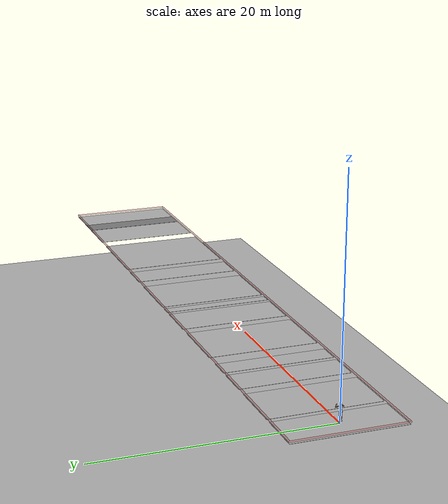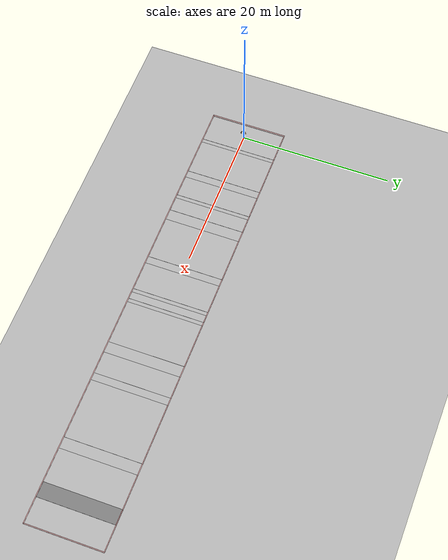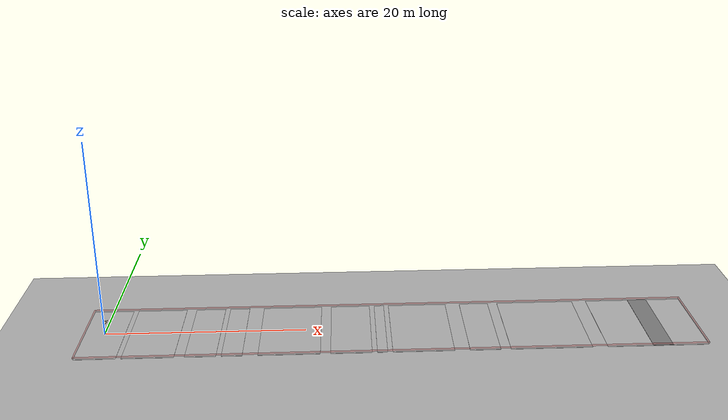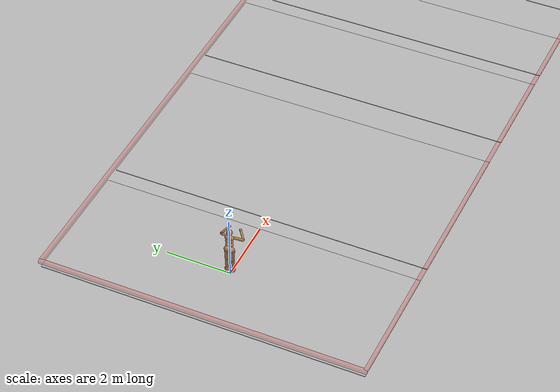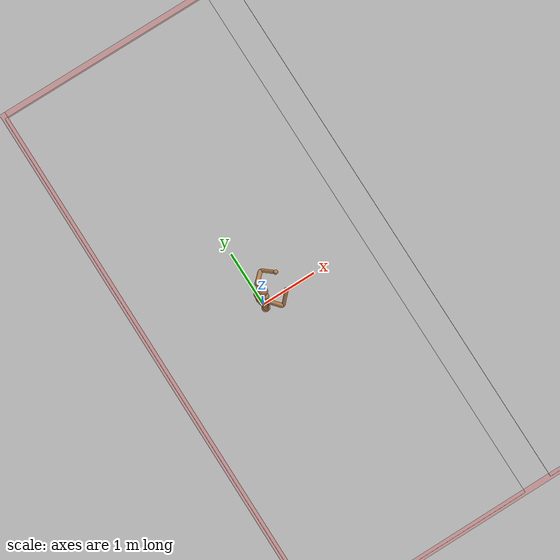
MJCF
<mujoco model="gaps_humanoid">
  <option timestep="0.004" iterations="1" ls_iterations="5" solver="Newton">
    <flag eulerdamp="disable"/>
  </option>

  <statistic center="0 0 0.1" extent="10.0" meansize="0.04"/>

  <visual>
    <rgba force="1 0 0 1" haze = "0.71 0.71 0.71 0.51" fog="0.71 0.71 0.71 1" rangefinder="1 1 0.1 0.11"/>
    <global azimuth="140" elevation="-20" offwidth="1920" offheight="1080"/>
    <quality shadowsize="8192" offsamples="8" numslices="32" numstacks="24" numquads="16"/>
  </visual>

  <asset>
    <texture type="skybox" builtin="gradient" rgb1="0.71 0.71 0.71" rgb2="0.71 0.71 0.71" width="800" height="800"/>
    <texture name="grey_squares" builtin="checker" height="800" width="800" rgb1="0.71 0.71 0.71" rgb2="0.71 0.71 0.71" type="2d" mark="edge" markrgb="1 1 1"/>
    <texture name="black_white_checkers" type="2d" builtin="checker" width="512" height="512" rgb1="0 0 0" rgb2="1 1 1"/>

    <material name="body" rgba=".7 .5 .3 1" specular="0.9" shininess="0.8"/>
    <material name="floor" reflectance="0.0" texrepeat="1 1" texuniform="true" texture="grey_squares"/>
    <material name="finish_line" texture="black_white_checkers" texrepeat="2 10"/>
  </asset>

  <default>
    <joint armature="1" damping="1" limited="true"/>
    <geom contype="0" conaffinity="0" condim="3"/>
    <motor ctrllimited="true" ctrlrange="-.4 .4"/>
    <default class="humanoid">
      <geom type="capsule" material="body"/>
    </default>
    <default class="platform">
      <geom material="floor"/>
    </default>
  </default>

  <worldbody>
    <!-- Building out the track -->
    <geom name="floor_bottom" pos="0 0 -10" size="0 0 0.010" type="plane" material="floor"/>
    <geom name="side_railing1" type="box" pos="28.75 5 0.2" size="30.75 0.05 0.06" rgba="0.9 0.3 0.3 0.31"/>
    <geom name="side_railing2" type="box" pos="28.75 -5 0.2" size="30.75 0.05 0.06" rgba="0.9 0.3 0.3 0.31"/>
    <geom name="back_railing" type="box" pos="-2.0 0.0 0.2" size="0.05 5.05 0.06" rgba="0.9 0.3 0.3 0.31"/>
    <geom name="front_railing" type="box" pos="59.5 0.0 0.2" size="0.05 5.05 0.06" rgba="0.9 0.3 0.3 0.31"/>
    <geom name="finish_line" type="box" pos="55 0 0.01" size="1 5 0.01" material="finish_line"/>
    <site name="finish_line" size="0.01" pos="55 0 0"/>

    <!-- Humanoid -->
    <body name="humanoid" childclass="humanoid" pos="0 0 1.40">
      <camera name="cam_default" mode="trackcom" pos="1.242 -9.993 5.903" xyaxes="0.996 0.087 -0.000 -0.044 0.501 0.864"/>
      <light name="tracking_light" pos="0 0 7" dir="0 0 -1" specular="0.8 0.8 0.8" mode="trackcom"/>
      <site name="humanoid" size="0.01" pos="0 0 0"/>
      <joint name="humanoid_root" type="free" armature="0" damping="0" limited="false" pos="0 0 0" stiffness="0"/>
      <geom name="humanoid_torso" fromto="0 -.07 0 0 .07 0" size="0.07" type="capsule"/>

      <body name="humanoid_head" pos="0 0 0.19">
        <geom name="humanoid_head" pos="0 0 0" size=".09" type="sphere"/>
        <site name="humanoid_ray_00" fromto=".23 -.02  -.03 .17 0 .0" type="capsule" size=".002 .1" group="4"/>
        <site name="humanoid_ray_01" fromto=".23 -.01  -.03 .17 0 .0" type="capsule" size=".002 .1" group="4"/>
        <site name="humanoid_ray_02" fromto=".23   0   -.03 .17 0 .0" type="capsule" size=".002 .1" group="4"/>
        <site name="humanoid_ray_03" fromto=".23  .01  -.03 .17 0 .0" type="capsule" size=".002 .1" group="4"/>
        <site name="humanoid_ray_04" fromto=".23  .02  -.03 .17 0 .0" type="capsule" size=".002 .1" group="4"/>

        <site name="humanoid_ray_05" fromto=".22 -.02  -.03  .17 0 .0" type="capsule" size=".002 .1" group="4"/>
        <site name="humanoid_ray_06" fromto=".22 -.01  -.03  .17 0 .0" type="capsule" size=".002 .1" group="4"/>
        <site name="humanoid_ray_07" fromto=".22   0   -.03  .17 0 .0" type="capsule" size=".002 .1" group="4"/>
        <site name="humanoid_ray_08" fromto=".22  .01  -.03  .17 0 .0" type="capsule" size=".002 .1" group="4"/>
        <site name="humanoid_ray_09" fromto=".22  .02  -.03  .17 0 .0" type="capsule" size=".002 .1" group="4"/>

        <site name="humanoid_ray_10" fromto=".21 -.02  -.03 .17 0 .0" type="capsule" size=".002 .1" group="4"/>
        <site name="humanoid_ray_11" fromto=".21 -.01  -.03 .17 0 .0" type="capsule" size=".002 .1" group="4"/>
        <site name="humanoid_ray_12" fromto=".21   0   -.03 .17 0 .0" type="capsule" size=".002 .1" group="4"/>
        <site name="humanoid_ray_13" fromto=".21  .01  -.03 .17 0 .0" type="capsule" size=".002 .1" group="4"/>
        <site name="humanoid_ray_14" fromto=".21  .02  -.03 .17 0 .0" type="capsule" size=".002 .1" group="4"/>

        <site name="humanoid_ray_15" fromto=".2 -.02  -.03 .17 0 .0" type="capsule" size=".002 .1" group="4"/>
        <site name="humanoid_ray_16" fromto=".2 -.01  -.03 .17 0 .0" type="capsule" size=".002 .1" group="4"/>
        <site name="humanoid_ray_17" fromto=".2   0   -.03 .17 0 .0" type="capsule" size=".002 .1" group="4"/>
        <site name="humanoid_ray_18" fromto=".2  .01  -.03 .17 0 .0" type="capsule" size=".002 .1" group="4"/>
        <site name="humanoid_ray_19" fromto=".2  .02  -.03 .17 0 .0" type="capsule" size=".002 .1" group="4"/>

        <site name="humanoid_ray_20" fromto=".19 -.02  -.03 .17  0 .0" type="capsule" size=".002 .1" group="4"/>
        <site name="humanoid_ray_21" fromto=".19 -.01  -.03 .17  0 .0" type="capsule" size=".002 .1" group="4"/>
        <site name="humanoid_ray_22" fromto=".19   0   -.03 .17  0 .0" type="capsule" size=".002 .1" group="4"/>
        <site name="humanoid_ray_23" fromto=".19  .01  -.03 .17  0 .0" type="capsule" size=".002 .1" group="4"/>
        <site name="humanoid_ray_24" fromto=".19  .02  -.03 .17  0 .0" type="capsule" size=".002 .1" group="4"/>

        <site name="humanoid_ray_25" fromto=".18 -.02  -.03 .17  0 .00" type="capsule" size=".002 .1" group="4"/>
        <site name="humanoid_ray_26" fromto=".18 -.01  -.03 .17  0 .00" type="capsule" size=".002 .1" group="4"/>
        <site name="humanoid_ray_27" fromto=".18   0   -.03 .17  0 .00" type="capsule" size=".002 .1" group="4"/>
        <site name="humanoid_ray_28" fromto=".18  .01  -.03 .17  0 .00" type="capsule" size=".002 .1" group="4"/>
        <site name="humanoid_ray_29" fromto=".18  .02  -.03 .17  0 .00" type="capsule" size=".002 .1" group="4"/>
      </body>

      <geom name="humanoid_uwaist" fromto="-.01 -.06 -.12 -.01 .06 -.12" size="0.06" type="capsule"/>
      <body name="humanoid_lwaist" pos="-.01 0 -0.260" quat="1.000 0 -0.002 0">
        <geom name="humanoid_lwaist" fromto="0 -.06 0 0 .06 0" size="0.06" type="capsule"/>
        <joint name="humanoid_abdomen_z" armature="0.02" axis="0 0 1" damping="5" pos="0 0 0.065" range="-45 45" stiffness="20" type="hinge"/>
        <joint name="humanoid_abdomen_y" armature="0.02" axis="0 1 0" damping="5" pos="0 0 0.065" range="-75 30" stiffness="10" type="hinge"/>
        <body name="humanoid_pelvis" pos="0 0 -0.165" quat="1.000 0 -0.002 0">
          <joint name="humanoid_abdomen_x" armature="0.02" axis="1 0 0" damping="5" pos="0 0 0.1" range="-35 35" stiffness="10" type="hinge"/>
          <geom name="humanoid_butt" fromto="-.02 -.07 0 -.02 .07 0" size="0.09" type="capsule"/>
          <body name="humanoid_right_thigh" pos="0 -0.1 -0.04">
            <joint name="humanoid_right_hip_x" armature="0.01" axis="1 0 0" damping="5" pos="0 0 0" range="-25 5" stiffness="10" type="hinge"/>
            <joint name="humanoid_right_hip_z" armature="0.01" axis="0 0 1" damping="5" pos="0 0 0" range="-60 35" stiffness="10" type="hinge"/>
            <joint name="humanoid_right_hip_y" armature="0.0080" axis="0 1 0" damping="5" pos="0 0 0" range="-110 20" stiffness="20" type="hinge"/>
            <geom name="humanoid_right_thigh" fromto="0 0 0 0 0.01 -.34" size="0.06" type="capsule"/>
            <body name="humanoid_right_shin" pos="0 0.01 -0.403">
              <joint name="humanoid_right_knee" armature="0.0060" axis="0 -1 0" pos="0 0 .02" range="-160 -2" type="hinge"/>
              <geom name="humanoid_right_shin" fromto="0 0 0 0 0 -.3" size="0.049" type="capsule"/>
              <body name="humanoid_right_foot" pos="0 0 -0.45">
                <geom name="humanoid_right_foot" pos="0 0 0.1" size="0.075" type="sphere"/>
              </body>
            </body>
          </body>
          <body name="humanoid_left_thigh" pos="0 0.1 -0.04">
            <joint name="humanoid_left_hip_x" armature="0.01" axis="-1 0 0" damping="5" pos="0 0 0" range="-25 5" stiffness="10" type="hinge"/>
            <joint name="humanoid_left_hip_z" armature="0.01" axis="0 0 -1" damping="5" pos="0 0 0" range="-60 35" stiffness="10" type="hinge"/>
            <joint name="humanoid_left_hip_y" armature="0.01" axis="0 1 0" damping="5" pos="0 0 0" range="-110 20" stiffness="20" type="hinge"/>
            <geom name="humanoid_left_thigh" fromto="0 0 0 0 -0.01 -.34" size="0.06" type="capsule"/>
            <body name="humanoid_left_shin" pos="0 -0.01 -0.403">
              <joint name="humanoid_left_knee" armature="0.0060" axis="0 -1 0" pos="0 0 .02" range="-160 -2" stiffness="1" type="hinge"/>
              <geom name="humanoid_left_shin" fromto="0 0 0 0 0 -.3" size="0.049" type="capsule"/>
              <body name="humanoid_left_foot" pos="0 0 -0.45">
                <geom name="humanoid_left_foot" type="sphere" size="0.075" pos="0 0 0.1"/>
              </body>
            </body>
          </body>
        </body>
      </body>
      <body name="humanoid_right_upper_arm" pos="0 -0.17 0.06">
        <joint name="humanoid_right_shoulder1" armature="0.0068" axis="2 1 1" pos="0 0 0" range="-85 60" stiffness="1" type="hinge"/>
        <joint name="humanoid_right_shoulder2" armature="0.0051" axis="0 -1 1" pos="0 0 0" range="-85 60" stiffness="1" type="hinge"/>
        <geom name="humanoid_right_uarm" fromto="0 0 0 .16 -.16 -.16" size="0.04 0.16" type="capsule"/>
        <body name="humanoid_right_lower_arm" pos=".18 -.18 -.18">
          <joint name="humanoid_right_elbow" armature="0.0028" axis="0 -1 1" pos="0 0 0" range="-90 50" stiffness="0" type="hinge"/>
          <geom name="humanoid_right_larm" fromto="0.01 0.01 0.01 .17 .17 .17" size="0.031" type="capsule"/>
          <geom name="humanoid_right_hand" pos=".18 .18 .18" size="0.04" type="sphere"/>
        </body>
      </body>
      <body name="humanoid_left_upper_arm" pos="0 0.17 0.06">
        <joint name="humanoid_left_shoulder1" armature="0.0068" axis="2 -1 1" pos="0 0 0" range="-60 85" stiffness="1" type="hinge"/>
        <joint name="humanoid_left_shoulder2" armature="0.0051" axis="0 1 1" pos="0 0 0" range="-60 85" stiffness="1" type="hinge"/>
        <geom name="humanoid_left_uarm" fromto="0 0 0 .16 .16 -.16" size="0.04 0.16" type="capsule"/>
        <body name="humanoid_left_lower_arm" pos=".18 .18 -.18">
          <joint name="humanoid_left_elbow" armature="0.0028" axis="0 -1 -1" pos="0 0 0" range="-90 50" stiffness="0" type="hinge"/>
          <geom name="humanoid_left_larm" fromto="0.01 -0.01 0.01 .17 -.17 .17" size="0.031" type="capsule"/>
          <geom name="humanoid_left_hand" pos=".18 -.18 .18" size="0.04" type="sphere"/>
        </body>
      </body>
    </body>

    <body name="corridor" pos="0 0 0">
      <geom name="platform_1" type="box" pos="0 0 -0.01" size="2 5 0.01" class="platform"/>
      <geom name="platform_2" type="box" pos="5 0 -0.01" size="2.5 5 0.01" class="platform"/>
      <geom name="platform_3" type="box" pos="10 0 -0.01" size="1.5 5 0.01" class="platform"/>
      <geom name="platform_4" type="box" pos="13 0 -0.01" size="1 5 0.01" class="platform"/>
      <geom name="platform_5" type="box" pos="18.5 0 -0.01" size="3 5 0.01" class="platform"/>
      <geom name="platform_6" type="box" pos="24.5 0 -0.01" size="2 5 0.01" class="platform"/>
      <geom name="platform_7" type="box" pos="27.5 0 -0.01" size="0.5 5 0.01" class="platform"/>
      <geom name="platform_8" type="box" pos="31.5 0 -0.01" size="3 5 0.01" class="platform"/>
      <geom name="platform_9" type="box" pos="37.5 0 -0.01" size="1.5 5 0.01" class="platform"/>
      <geom name="platform_10" type="box" pos="44 0 -0.01" size="4 5 0.01" class="platform"/>
      <geom name="platform_end" type="box" pos="54.5 0 -0.01" size="5 5 0.01" class="platform"/>
    </body>
  </worldbody>

  <contact>
    <pair geom1="humanoid_left_foot" geom2="platform_1" friction="1 1 0.1 0.1 0.1"/>
    <pair geom1="humanoid_left_foot" geom2="platform_2" friction="1 1 0.1 0.1 0.1"/>
    <pair geom1="humanoid_left_foot" geom2="platform_3" friction="1 1 0.1 0.1 0.1"/>
    <pair geom1="humanoid_left_foot" geom2="platform_4" friction="1 1 0.1 0.1 0.1"/>
    <pair geom1="humanoid_left_foot" geom2="platform_5" friction="1 1 0.1 0.1 0.1"/>
    <pair geom1="humanoid_left_foot" geom2="platform_6" friction="1 1 0.1 0.1 0.1"/>
    <pair geom1="humanoid_left_foot" geom2="platform_7" friction="1 1 0.1 0.1 0.1"/>
    <pair geom1="humanoid_left_foot" geom2="platform_8" friction="1 1 0.1 0.1 0.1"/>
    <pair geom1="humanoid_left_foot" geom2="platform_9" friction="1 1 0.1 0.1 0.1"/>
    <pair geom1="humanoid_left_foot" geom2="platform_10" friction="1 1 0.1 0.1 0.1"/>
    <pair geom1="humanoid_left_foot" geom2="platform_end" friction="1 1 0.1 0.1 0.1"/>

    <pair geom1="humanoid_right_foot" geom2="platform_1" friction="1 1 0.1 0.1 0.1"/>
    <pair geom1="humanoid_right_foot" geom2="platform_2" friction="1 1 0.1 0.1 0.1"/>
    <pair geom1="humanoid_right_foot" geom2="platform_3" friction="1 1 0.1 0.1 0.1"/>
    <pair geom1="humanoid_right_foot" geom2="platform_4" friction="1 1 0.1 0.1 0.1"/>
    <pair geom1="humanoid_right_foot" geom2="platform_5" friction="1 1 0.1 0.1 0.1"/>
    <pair geom1="humanoid_right_foot" geom2="platform_6" friction="1 1 0.1 0.1 0.1"/>
    <pair geom1="humanoid_right_foot" geom2="platform_7" friction="1 1 0.1 0.1 0.1"/>
    <pair geom1="humanoid_right_foot" geom2="platform_8" friction="1 1 0.1 0.1 0.1"/>
    <pair geom1="humanoid_right_foot" geom2="platform_9" friction="1 1 0.1 0.1 0.1"/>
    <pair geom1="humanoid_right_foot" geom2="platform_10" friction="1 1 0.1 0.1 0.1"/>
    <pair geom1="humanoid_right_foot" geom2="platform_end" friction="1 1 0.1 0.1 0.1"/>

    <pair geom1="humanoid_torso" geom2="platform_1"/>
    <pair geom1="humanoid_torso" geom2="platform_2"/>
    <pair geom1="humanoid_torso" geom2="platform_3"/>
    <pair geom1="humanoid_torso" geom2="platform_4"/>
    <pair geom1="humanoid_torso" geom2="platform_5"/>
    <pair geom1="humanoid_torso" geom2="platform_6"/>
    <pair geom1="humanoid_torso" geom2="platform_7"/>
    <pair geom1="humanoid_torso" geom2="platform_8"/>
    <pair geom1="humanoid_torso" geom2="platform_9"/>
    <pair geom1="humanoid_torso" geom2="platform_10"/>
    <pair geom1="humanoid_torso" geom2="platform_end"/>

    <pair geom1="humanoid_right_foot" geom2="humanoid_left_foot" condim="1"/>
    <pair geom1="humanoid_right_foot" geom2="humanoid_left_foot" condim="1"/>
    <pair geom1="humanoid_left_foot" geom2="humanoid_left_thigh" condim="1"/>
    <pair geom1="humanoid_left_foot" geom2="humanoid_butt" condim="1"/>
    <pair geom1="humanoid_left_foot" geom2="humanoid_right_shin" condim="1"/>
    <pair geom1="humanoid_left_foot" geom2="humanoid_right_thigh" condim="1"/>
    <pair geom1="humanoid_left_shin" geom2="humanoid_right_thigh" condim="1"/>
    <pair geom1="humanoid_right_foot" geom2="humanoid_right_thigh" condim="1"/>
    <pair geom1="humanoid_right_foot" geom2="humanoid_butt" condim="1"/>
    <pair geom1="humanoid_right_foot" geom2="humanoid_left_shin" condim="1"/>
    <pair geom1="humanoid_right_foot" geom2="humanoid_left_thigh" condim="1"/>
    <pair geom1="humanoid_right_shin" geom2="humanoid_left_thigh" condim="1"/>
  </contact>

  <actuator>
    <!-- Actuators for humanoid -->
    <motor gear="100" joint="humanoid_abdomen_y" name="humanoid_abdomen_y"/>
    <motor gear="100" joint="humanoid_abdomen_z" name="humanoid_abdomen_z"/>
    <motor gear="100" joint="humanoid_abdomen_x" name="humanoid_abdomen_x"/>
    <motor gear="100" joint="humanoid_right_hip_x" name="humanoid_right_hip_x"/>
    <motor gear="100" joint="humanoid_right_hip_z" name="humanoid_right_hip_z"/>
    <motor gear="300" joint="humanoid_right_hip_y" name="humanoid_right_hip_y"/>
    <motor gear="200" joint="humanoid_right_knee" name="humanoid_right_knee"/>
    <motor gear="100" joint="humanoid_left_hip_x" name="humanoid_left_hip_x"/>
    <motor gear="100" joint="humanoid_left_hip_z" name="humanoid_left_hip_z"/>
    <motor gear="300" joint="humanoid_left_hip_y" name="humanoid_left_hip_y"/>
    <motor gear="200" joint="humanoid_left_knee" name="humanoid_left_knee"/>
    <motor gear="25" joint="humanoid_right_shoulder1" name="humanoid_right_shoulder1"/>
    <motor gear="25" joint="humanoid_right_shoulder2" name="humanoid_right_shoulder2"/>
    <motor gear="25" joint="humanoid_right_elbow" name="humanoid_right_elbow"/>
    <motor gear="25" joint="humanoid_left_shoulder1" name="humanoid_left_shoulder1"/>
    <motor gear="25" joint="humanoid_left_shoulder2" name="humanoid_left_shoulder2"/>
    <motor gear="25" joint="humanoid_left_elbow" name="humanoid_left_elbow"/>
  </actuator>

  <sensor>
    <rangefinder name="humanoid_ray_00" site="humanoid_ray_00"/>
    <rangefinder name="humanoid_ray_01" site="humanoid_ray_01"/>
    <rangefinder name="humanoid_ray_02" site="humanoid_ray_02"/>
    <rangefinder name="humanoid_ray_03" site="humanoid_ray_03"/>
    <rangefinder name="humanoid_ray_04" site="humanoid_ray_04"/>

    <rangefinder name="humanoid_ray_05" site="humanoid_ray_05"/>
    <rangefinder name="humanoid_ray_06" site="humanoid_ray_06"/>
    <rangefinder name="humanoid_ray_07" site="humanoid_ray_07"/>
    <rangefinder name="humanoid_ray_08" site="humanoid_ray_08"/>
    <rangefinder name="humanoid_ray_09" site="humanoid_ray_09"/>

    <rangefinder name="humanoid_ray_10" site="humanoid_ray_10"/>
    <rangefinder name="humanoid_ray_11" site="humanoid_ray_11"/>
    <rangefinder name="humanoid_ray_12" site="humanoid_ray_12"/>
    <rangefinder name="humanoid_ray_13" site="humanoid_ray_13"/>
    <rangefinder name="humanoid_ray_14" site="humanoid_ray_14"/>

    <rangefinder name="humanoid_ray_15" site="humanoid_ray_15"/>
    <rangefinder name="humanoid_ray_16" site="humanoid_ray_16"/>
    <rangefinder name="humanoid_ray_17" site="humanoid_ray_17"/>
    <rangefinder name="humanoid_ray_18" site="humanoid_ray_18"/>
    <rangefinder name="humanoid_ray_19" site="humanoid_ray_19"/>
  </sensor>
</mujoco>
